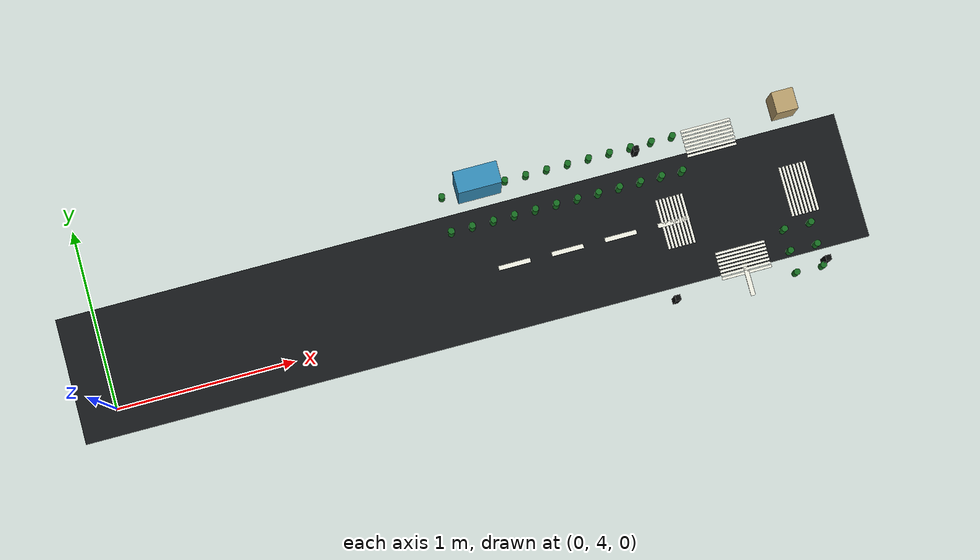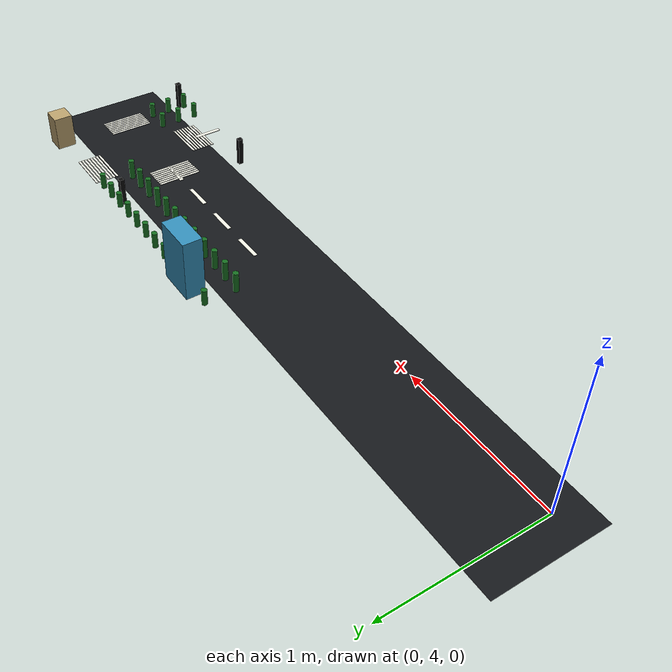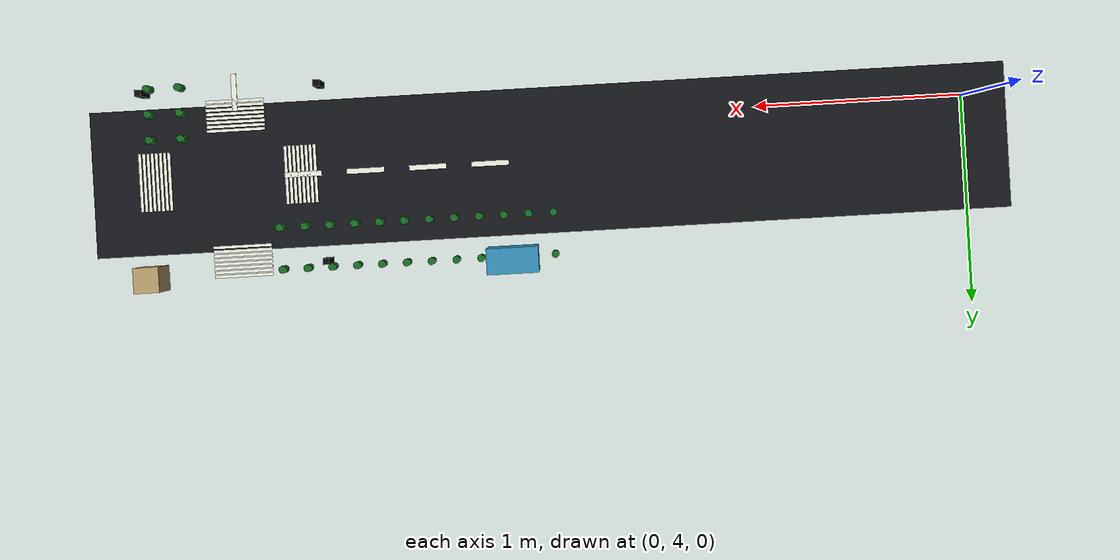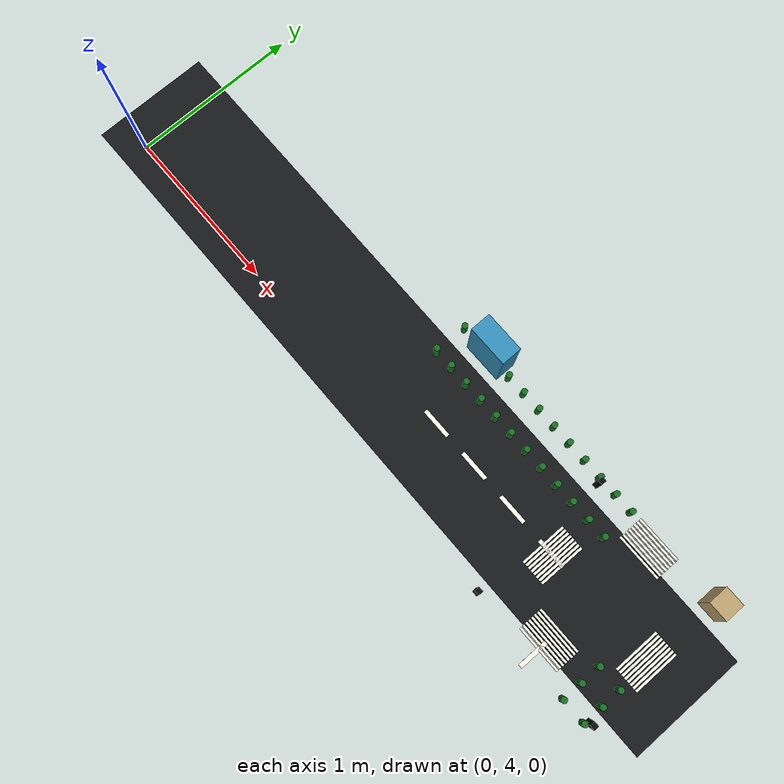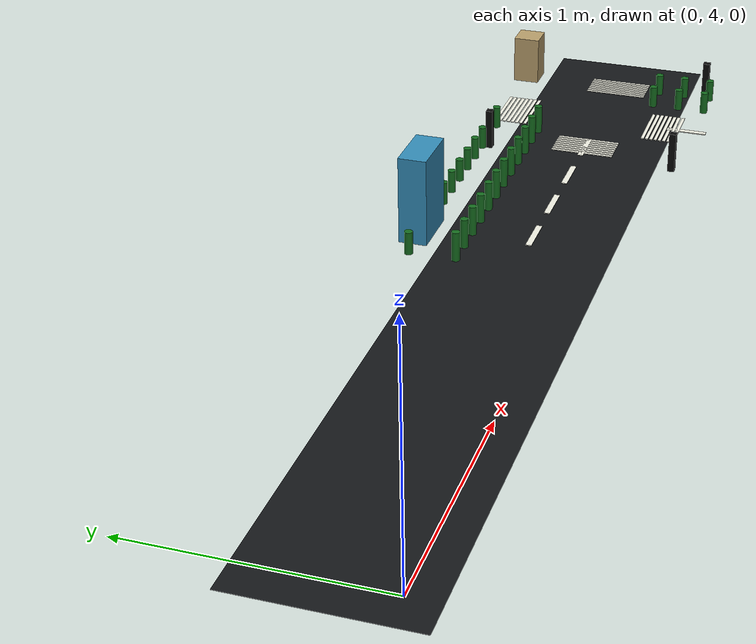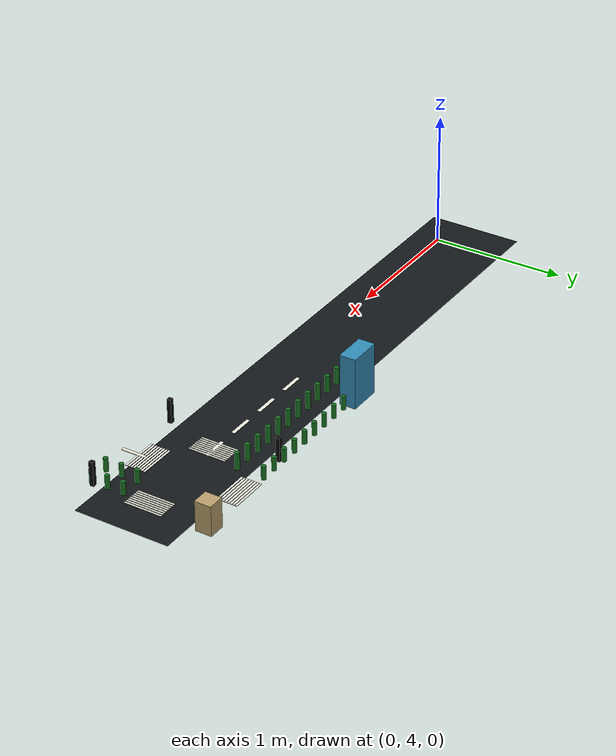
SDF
<sdf version="1.7">
 <world name="nexus_sandbox_imx219">
  <model name="RD-RING-N">
   <static>true</static>
   <pose>2.0 4.2 0.051000000000000004 0 0 0</pose>
   <link name="link">
    <collision name="collision">
     <geometry><box><size>4.4 0.7000000000000001 0.002</size></box></geometry>
    </collision>
    <visual name="visual">
     <geometry><box><size>4.4 0.7000000000000001 0.002</size></box></geometry>
     <material><ambient>0.08 0.09 0.1 1</ambient><diffuse>0.08 0.09 0.1 1</diffuse></material>
    </visual>
   </link>
  </model>
  <model name="LM-RING-E-11">
   <static>true</static>
   <pose>3.5 3.79 0.05450000000000001 0 0 0</pose>
   <link name="link">
    <collision name="collision"><geometry><box><size>0.025 0.18 0.004</size></box></geometry></collision>
    <visual name="visual">
     <geometry><box><size>0.025 0.18 0.004</size></box></geometry>
     <material><ambient>0.93 0.93 0.88 1</ambient><diffuse>0.93 0.93 0.88 1</diffuse></material>
    </visual>
   </link>
  </model>
  <model name="LM-RING-N-06">
   <static>true</static>
   <pose>2.29 4.2 0.05450000000000001 0 0 0</pose>
   <link name="link">
    <collision name="collision"><geometry><box><size>0.18 0.025 0.004</size></box></geometry></collision>
    <visual name="visual">
     <geometry><box><size>0.18 0.025 0.004</size></box></geometry>
     <material><ambient>0.93 0.93 0.88 1</ambient><diffuse>0.93 0.93 0.88 1</diffuse></material>
    </visual>
   </link>
  </model>
  <model name="LM-RING-N-07">
   <static>true</static>
   <pose>2.59 4.2 0.05450000000000001 0 0 0</pose>
   <link name="link">
    <collision name="collision"><geometry><box><size>0.18 0.025 0.004</size></box></geometry></collision>
    <visual name="visual">
     <geometry><box><size>0.18 0.025 0.004</size></box></geometry>
     <material><ambient>0.93 0.93 0.88 1</ambient><diffuse>0.93 0.93 0.88 1</diffuse></material>
    </visual>
   </link>
  </model>
  <model name="LM-RING-N-08">
   <static>true</static>
   <pose>2.89 4.2 0.05450000000000001 0 0 0</pose>
   <link name="link">
    <collision name="collision"><geometry><box><size>0.18 0.025 0.004</size></box></geometry></collision>
    <visual name="visual">
     <geometry><box><size>0.18 0.025 0.004</size></box></geometry>
     <material><ambient>0.93 0.93 0.88 1</ambient><diffuse>0.93 0.93 0.88 1</diffuse></material>
    </visual>
   </link>
  </model>
  <model name="LM-RING-N-09">
   <static>true</static>
   <pose>3.19 4.2 0.05450000000000001 0 0 0</pose>
   <link name="link">
    <collision name="collision"><geometry><box><size>0.18 0.025 0.004</size></box></geometry></collision>
    <visual name="visual">
     <geometry><box><size>0.18 0.025 0.004</size></box></geometry>
     <material><ambient>0.93 0.93 0.88 1</ambient><diffuse>0.93 0.93 0.88 1</diffuse></material>
    </visual>
   </link>
  </model>
  <model name="CW-NE-X-01">
   <static>true</static>
   <pose>3.5 3.83 0.05450000000000001 0 0 0</pose>
   <link name="link">
    <collision name="collision"><geometry><box><size>0.28 0.014 0.004</size></box></geometry></collision>
    <visual name="visual">
     <geometry><box><size>0.28 0.014 0.004</size></box></geometry>
     <material><ambient>0.93 0.93 0.88 1</ambient><diffuse>0.93 0.93 0.88 1</diffuse></material>
    </visual>
   </link>
  </model>
  <model name="CW-NE-X-02">
   <static>true</static>
   <pose>3.5 3.85 0.05450000000000001 0 0 0</pose>
   <link name="link">
    <collision name="collision"><geometry><box><size>0.28 0.014 0.004</size></box></geometry></collision>
    <visual name="visual">
     <geometry><box><size>0.28 0.014 0.004</size></box></geometry>
     <material><ambient>0.93 0.93 0.88 1</ambient><diffuse>0.93 0.93 0.88 1</diffuse></material>
    </visual>
   </link>
  </model>
  <model name="CW-NE-X-03">
   <static>true</static>
   <pose>3.5 3.87 0.05450000000000001 0 0 0</pose>
   <link name="link">
    <collision name="collision"><geometry><box><size>0.28 0.014 0.004</size></box></geometry></collision>
    <visual name="visual">
     <geometry><box><size>0.28 0.014 0.004</size></box></geometry>
     <material><ambient>0.93 0.93 0.88 1</ambient><diffuse>0.93 0.93 0.88 1</diffuse></material>
    </visual>
   </link>
  </model>
  <model name="CW-NE-X-04">
   <static>true</static>
   <pose>3.5 3.89 0.05450000000000001 0 0 0</pose>
   <link name="link">
    <collision name="collision"><geometry><box><size>0.28 0.014 0.004</size></box></geometry></collision>
    <visual name="visual">
     <geometry><box><size>0.28 0.014 0.004</size></box></geometry>
     <material><ambient>0.93 0.93 0.88 1</ambient><diffuse>0.93 0.93 0.88 1</diffuse></material>
    </visual>
   </link>
  </model>
  <model name="CW-NE-X-05">
   <static>true</static>
   <pose>3.5 3.9099999999999997 0.05450000000000001 0 0 0</pose>
   <link name="link">
    <collision name="collision"><geometry><box><size>0.28 0.014 0.004</size></box></geometry></collision>
    <visual name="visual">
     <geometry><box><size>0.28 0.014 0.004</size></box></geometry>
     <material><ambient>0.93 0.93 0.88 1</ambient><diffuse>0.93 0.93 0.88 1</diffuse></material>
    </visual>
   </link>
  </model>
  <model name="CW-NE-X-06">
   <static>true</static>
   <pose>3.5 3.9299999999999997 0.05450000000000001 0 0 0</pose>
   <link name="link">
    <collision name="collision"><geometry><box><size>0.28 0.014 0.004</size></box></geometry></collision>
    <visual name="visual">
     <geometry><box><size>0.28 0.014 0.004</size></box></geometry>
     <material><ambient>0.93 0.93 0.88 1</ambient><diffuse>0.93 0.93 0.88 1</diffuse></material>
    </visual>
   </link>
  </model>
  <model name="CW-NE-X-07">
   <static>true</static>
   <pose>3.5 3.9499999999999997 0.05450000000000001 0 0 0</pose>
   <link name="link">
    <collision name="collision"><geometry><box><size>0.28 0.014 0.004</size></box></geometry></collision>
    <visual name="visual">
     <geometry><box><size>0.28 0.014 0.004</size></box></geometry>
     <material><ambient>0.93 0.93 0.88 1</ambient><diffuse>0.93 0.93 0.88 1</diffuse></material>
    </visual>
   </link>
  </model>
  <model name="CW-NE-X-08">
   <static>true</static>
   <pose>3.5 3.9699999999999998 0.05450000000000001 0 0 0</pose>
   <link name="link">
    <collision name="collision"><geometry><box><size>0.28 0.014 0.004</size></box></geometry></collision>
    <visual name="visual">
     <geometry><box><size>0.28 0.014 0.004</size></box></geometry>
     <material><ambient>0.93 0.93 0.88 1</ambient><diffuse>0.93 0.93 0.88 1</diffuse></material>
    </visual>
   </link>
  </model>
  <model name="CW-NE-Y-01">
   <static>true</static>
   <pose>3.1300000000000003 4.2 0.05450000000000001 0 0 0</pose>
   <link name="link">
    <collision name="collision"><geometry><box><size>0.014 0.28 0.004</size></box></geometry></collision>
    <visual name="visual">
     <geometry><box><size>0.014 0.28 0.004</size></box></geometry>
     <material><ambient>0.93 0.93 0.88 1</ambient><diffuse>0.93 0.93 0.88 1</diffuse></material>
    </visual>
   </link>
  </model>
  <model name="CW-NE-Y-02">
   <static>true</static>
   <pose>3.1500000000000004 4.2 0.05450000000000001 0 0 0</pose>
   <link name="link">
    <collision name="collision"><geometry><box><size>0.014 0.28 0.004</size></box></geometry></collision>
    <visual name="visual">
     <geometry><box><size>0.014 0.28 0.004</size></box></geometry>
     <material><ambient>0.93 0.93 0.88 1</ambient><diffuse>0.93 0.93 0.88 1</diffuse></material>
    </visual>
   </link>
  </model>
  <model name="CW-NE-Y-03">
   <static>true</static>
   <pose>3.1700000000000004 4.2 0.05450000000000001 0 0 0</pose>
   <link name="link">
    <collision name="collision"><geometry><box><size>0.014 0.28 0.004</size></box></geometry></collision>
    <visual name="visual">
     <geometry><box><size>0.014 0.28 0.004</size></box></geometry>
     <material><ambient>0.93 0.93 0.88 1</ambient><diffuse>0.93 0.93 0.88 1</diffuse></material>
    </visual>
   </link>
  </model>
  <model name="CW-NE-Y-04">
   <static>true</static>
   <pose>3.1900000000000004 4.2 0.05450000000000001 0 0 0</pose>
   <link name="link">
    <collision name="collision"><geometry><box><size>0.014 0.28 0.004</size></box></geometry></collision>
    <visual name="visual">
     <geometry><box><size>0.014 0.28 0.004</size></box></geometry>
     <material><ambient>0.93 0.93 0.88 1</ambient><diffuse>0.93 0.93 0.88 1</diffuse></material>
    </visual>
   </link>
  </model>
  <model name="CW-NE-Y-05">
   <static>true</static>
   <pose>3.21 4.2 0.05450000000000001 0 0 0</pose>
   <link name="link">
    <collision name="collision"><geometry><box><size>0.014 0.28 0.004</size></box></geometry></collision>
    <visual name="visual">
     <geometry><box><size>0.014 0.28 0.004</size></box></geometry>
     <material><ambient>0.93 0.93 0.88 1</ambient><diffuse>0.93 0.93 0.88 1</diffuse></material>
    </visual>
   </link>
  </model>
  <model name="CW-NE-Y-06">
   <static>true</static>
   <pose>3.23 4.2 0.05450000000000001 0 0 0</pose>
   <link name="link">
    <collision name="collision"><geometry><box><size>0.014 0.28 0.004</size></box></geometry></collision>
    <visual name="visual">
     <geometry><box><size>0.014 0.28 0.004</size></box></geometry>
     <material><ambient>0.93 0.93 0.88 1</ambient><diffuse>0.93 0.93 0.88 1</diffuse></material>
    </visual>
   </link>
  </model>
  <model name="CW-NE-Y-07">
   <static>true</static>
   <pose>3.25 4.2 0.05450000000000001 0 0 0</pose>
   <link name="link">
    <collision name="collision"><geometry><box><size>0.014 0.28 0.004</size></box></geometry></collision>
    <visual name="visual">
     <geometry><box><size>0.014 0.28 0.004</size></box></geometry>
     <material><ambient>0.93 0.93 0.88 1</ambient><diffuse>0.93 0.93 0.88 1</diffuse></material>
    </visual>
   </link>
  </model>
  <model name="CW-NE-Y-08">
   <static>true</static>
   <pose>3.27 4.2 0.05450000000000001 0 0 0</pose>
   <link name="link">
    <collision name="collision"><geometry><box><size>0.014 0.28 0.004</size></box></geometry></collision>
    <visual name="visual">
     <geometry><box><size>0.014 0.28 0.004</size></box></geometry>
     <material><ambient>0.93 0.93 0.88 1</ambient><diffuse>0.93 0.93 0.88 1</diffuse></material>
    </visual>
   </link>
  </model>
  <model name="CW-EXT-E-N-01">
   <static>true</static>
   <pose>3.5 4.53 0.05450000000000001 0 0 0</pose>
   <link name="link">
    <collision name="collision"><geometry><box><size>0.28 0.014 0.004</size></box></geometry></collision>
    <visual name="visual">
     <geometry><box><size>0.28 0.014 0.004</size></box></geometry>
     <material><ambient>0.93 0.93 0.88 1</ambient><diffuse>0.93 0.93 0.88 1</diffuse></material>
    </visual>
   </link>
  </model>
  <model name="CW-EXT-E-N-02">
   <static>true</static>
   <pose>3.5 4.550000000000001 0.05450000000000001 0 0 0</pose>
   <link name="link">
    <collision name="collision"><geometry><box><size>0.28 0.014 0.004</size></box></geometry></collision>
    <visual name="visual">
     <geometry><box><size>0.28 0.014 0.004</size></box></geometry>
     <material><ambient>0.93 0.93 0.88 1</ambient><diffuse>0.93 0.93 0.88 1</diffuse></material>
    </visual>
   </link>
  </model>
  <model name="CW-EXT-E-N-03">
   <static>true</static>
   <pose>3.5 4.57 0.05450000000000001 0 0 0</pose>
   <link name="link">
    <collision name="collision"><geometry><box><size>0.28 0.014 0.004</size></box></geometry></collision>
    <visual name="visual">
     <geometry><box><size>0.28 0.014 0.004</size></box></geometry>
     <material><ambient>0.93 0.93 0.88 1</ambient><diffuse>0.93 0.93 0.88 1</diffuse></material>
    </visual>
   </link>
  </model>
  <model name="CW-EXT-E-N-04">
   <static>true</static>
   <pose>3.5 4.590000000000001 0.05450000000000001 0 0 0</pose>
   <link name="link">
    <collision name="collision"><geometry><box><size>0.28 0.014 0.004</size></box></geometry></collision>
    <visual name="visual">
     <geometry><box><size>0.28 0.014 0.004</size></box></geometry>
     <material><ambient>0.93 0.93 0.88 1</ambient><diffuse>0.93 0.93 0.88 1</diffuse></material>
    </visual>
   </link>
  </model>
  <model name="CW-EXT-E-N-05">
   <static>true</static>
   <pose>3.5 4.61 0.05450000000000001 0 0 0</pose>
   <link name="link">
    <collision name="collision"><geometry><box><size>0.28 0.014 0.004</size></box></geometry></collision>
    <visual name="visual">
     <geometry><box><size>0.28 0.014 0.004</size></box></geometry>
     <material><ambient>0.93 0.93 0.88 1</ambient><diffuse>0.93 0.93 0.88 1</diffuse></material>
    </visual>
   </link>
  </model>
  <model name="CW-EXT-E-N-06">
   <static>true</static>
   <pose>3.5 4.630000000000001 0.05450000000000001 0 0 0</pose>
   <link name="link">
    <collision name="collision"><geometry><box><size>0.28 0.014 0.004</size></box></geometry></collision>
    <visual name="visual">
     <geometry><box><size>0.28 0.014 0.004</size></box></geometry>
     <material><ambient>0.93 0.93 0.88 1</ambient><diffuse>0.93 0.93 0.88 1</diffuse></material>
    </visual>
   </link>
  </model>
  <model name="CW-EXT-E-N-07">
   <static>true</static>
   <pose>3.5 4.65 0.05450000000000001 0 0 0</pose>
   <link name="link">
    <collision name="collision"><geometry><box><size>0.28 0.014 0.004</size></box></geometry></collision>
    <visual name="visual">
     <geometry><box><size>0.28 0.014 0.004</size></box></geometry>
     <material><ambient>0.93 0.93 0.88 1</ambient><diffuse>0.93 0.93 0.88 1</diffuse></material>
    </visual>
   </link>
  </model>
  <model name="CW-EXT-E-N-08">
   <static>true</static>
   <pose>3.5 4.670000000000001 0.05450000000000001 0 0 0</pose>
   <link name="link">
    <collision name="collision"><geometry><box><size>0.28 0.014 0.004</size></box></geometry></collision>
    <visual name="visual">
     <geometry><box><size>0.28 0.014 0.004</size></box></geometry>
     <material><ambient>0.93 0.93 0.88 1</ambient><diffuse>0.93 0.93 0.88 1</diffuse></material>
    </visual>
   </link>
  </model>
  <model name="CW-EXT-N-E-01">
   <static>true</static>
   <pose>3.83 4.2 0.05450000000000001 0 0 0</pose>
   <link name="link">
    <collision name="collision"><geometry><box><size>0.014 0.28 0.004</size></box></geometry></collision>
    <visual name="visual">
     <geometry><box><size>0.014 0.28 0.004</size></box></geometry>
     <material><ambient>0.93 0.93 0.88 1</ambient><diffuse>0.93 0.93 0.88 1</diffuse></material>
    </visual>
   </link>
  </model>
  <model name="CW-EXT-N-E-02">
   <static>true</static>
   <pose>3.85 4.2 0.05450000000000001 0 0 0</pose>
   <link name="link">
    <collision name="collision"><geometry><box><size>0.014 0.28 0.004</size></box></geometry></collision>
    <visual name="visual">
     <geometry><box><size>0.014 0.28 0.004</size></box></geometry>
     <material><ambient>0.93 0.93 0.88 1</ambient><diffuse>0.93 0.93 0.88 1</diffuse></material>
    </visual>
   </link>
  </model>
  <model name="CW-EXT-N-E-03">
   <static>true</static>
   <pose>3.87 4.2 0.05450000000000001 0 0 0</pose>
   <link name="link">
    <collision name="collision"><geometry><box><size>0.014 0.28 0.004</size></box></geometry></collision>
    <visual name="visual">
     <geometry><box><size>0.014 0.28 0.004</size></box></geometry>
     <material><ambient>0.93 0.93 0.88 1</ambient><diffuse>0.93 0.93 0.88 1</diffuse></material>
    </visual>
   </link>
  </model>
  <model name="CW-EXT-N-E-04">
   <static>true</static>
   <pose>3.89 4.2 0.05450000000000001 0 0 0</pose>
   <link name="link">
    <collision name="collision"><geometry><box><size>0.014 0.28 0.004</size></box></geometry></collision>
    <visual name="visual">
     <geometry><box><size>0.014 0.28 0.004</size></box></geometry>
     <material><ambient>0.93 0.93 0.88 1</ambient><diffuse>0.93 0.93 0.88 1</diffuse></material>
    </visual>
   </link>
  </model>
  <model name="CW-EXT-N-E-05">
   <static>true</static>
   <pose>3.9099999999999997 4.2 0.05450000000000001 0 0 0</pose>
   <link name="link">
    <collision name="collision"><geometry><box><size>0.014 0.28 0.004</size></box></geometry></collision>
    <visual name="visual">
     <geometry><box><size>0.014 0.28 0.004</size></box></geometry>
     <material><ambient>0.93 0.93 0.88 1</ambient><diffuse>0.93 0.93 0.88 1</diffuse></material>
    </visual>
   </link>
  </model>
  <model name="CW-EXT-N-E-06">
   <static>true</static>
   <pose>3.9299999999999997 4.2 0.05450000000000001 0 0 0</pose>
   <link name="link">
    <collision name="collision"><geometry><box><size>0.014 0.28 0.004</size></box></geometry></collision>
    <visual name="visual">
     <geometry><box><size>0.014 0.28 0.004</size></box></geometry>
     <material><ambient>0.93 0.93 0.88 1</ambient><diffuse>0.93 0.93 0.88 1</diffuse></material>
    </visual>
   </link>
  </model>
  <model name="CW-EXT-N-E-07">
   <static>true</static>
   <pose>3.9499999999999997 4.2 0.05450000000000001 0 0 0</pose>
   <link name="link">
    <collision name="collision"><geometry><box><size>0.014 0.28 0.004</size></box></geometry></collision>
    <visual name="visual">
     <geometry><box><size>0.014 0.28 0.004</size></box></geometry>
     <material><ambient>0.93 0.93 0.88 1</ambient><diffuse>0.93 0.93 0.88 1</diffuse></material>
    </visual>
   </link>
  </model>
  <model name="CW-EXT-N-E-08">
   <static>true</static>
   <pose>3.9699999999999998 4.2 0.05450000000000001 0 0 0</pose>
   <link name="link">
    <collision name="collision"><geometry><box><size>0.014 0.28 0.004</size></box></geometry></collision>
    <visual name="visual">
     <geometry><box><size>0.014 0.28 0.004</size></box></geometry>
     <material><ambient>0.93 0.93 0.88 1</ambient><diffuse>0.93 0.93 0.88 1</diffuse></material>
    </visual>
   </link>
  </model>
  <model name="BLD-F03">
   <static>true</static>
   <pose>2.2 4.66 0.24 0 0 0</pose>
   <link name="link">
    <collision name="collision"><geometry><box><size>0.24 0.12 0.38</size></box></geometry></collision>
    <visual name="visual">
     <geometry><box><size>0.24 0.12 0.38</size></box></geometry>
     <material><ambient>0.2 0.55 0.72 1</ambient><diffuse>0.2 0.55 0.72 1</diffuse></material>
    </visual>
   </link>
  </model>
  <model name="BLD-F04">
   <static>true</static>
   <pose>3.92 4.66 0.16 0 0 0</pose>
   <link name="link">
    <collision name="collision"><geometry><box><size>0.12 0.12 0.22</size></box></geometry></collision>
    <visual name="visual">
     <geometry><box><size>0.12 0.12 0.22</size></box></geometry>
     <material><ambient>0.72 0.62 0.42 1</ambient><diffuse>0.72 0.62 0.42 1</diffuse></material>
    </visual>
   </link>
  </model>
  <model name="TR-R01-26">
   <static>true</static>
   <pose>3.9 3.7555555555555555 0.1 0 0 0</pose>
   <link name="link">
    <collision name="collision">
     <geometry><cylinder><radius>0.0175</radius><length>0.1</length></cylinder></geometry>
    </collision>
    <visual name="visual">
     <geometry><cylinder><radius>0.0175</radius><length>0.1</length></cylinder></geometry>
     <material><ambient>0.08 0.42 0.12 1</ambient><diffuse>0.08 0.42 0.12 1</diffuse></material>
    </visual>
   </link>
  </model>
  <model name="TR-R01-27">
   <static>true</static>
   <pose>3.9 3.8777777777777778 0.1 0 0 0</pose>
   <link name="link">
    <collision name="collision">
     <geometry><cylinder><radius>0.0175</radius><length>0.1</length></cylinder></geometry>
    </collision>
    <visual name="visual">
     <geometry><cylinder><radius>0.0175</radius><length>0.1</length></cylinder></geometry>
     <material><ambient>0.08 0.42 0.12 1</ambient><diffuse>0.08 0.42 0.12 1</diffuse></material>
    </visual>
   </link>
  </model>
  <model name="TR-R01-28">
   <static>true</static>
   <pose>3.9 4.0 0.1 0 0 0</pose>
   <link name="link">
    <collision name="collision">
     <geometry><cylinder><radius>0.0175</radius><length>0.1</length></cylinder></geometry>
    </collision>
    <visual name="visual">
     <geometry><cylinder><radius>0.0175</radius><length>0.1</length></cylinder></geometry>
     <material><ambient>0.08 0.42 0.12 1</ambient><diffuse>0.08 0.42 0.12 1</diffuse></material>
    </visual>
   </link>
  </model>
  <model name="TR-R02-26">
   <static>true</static>
   <pose>3.75 3.7555555555555555 0.1 0 0 0</pose>
   <link name="link">
    <collision name="collision">
     <geometry><cylinder><radius>0.0175</radius><length>0.1</length></cylinder></geometry>
    </collision>
    <visual name="visual">
     <geometry><cylinder><radius>0.0175</radius><length>0.1</length></cylinder></geometry>
     <material><ambient>0.08 0.42 0.12 1</ambient><diffuse>0.08 0.42 0.12 1</diffuse></material>
    </visual>
   </link>
  </model>
  <model name="TR-R02-27">
   <static>true</static>
   <pose>3.75 3.8777777777777778 0.1 0 0 0</pose>
   <link name="link">
    <collision name="collision">
     <geometry><cylinder><radius>0.0175</radius><length>0.1</length></cylinder></geometry>
    </collision>
    <visual name="visual">
     <geometry><cylinder><radius>0.0175</radius><length>0.1</length></cylinder></geometry>
     <material><ambient>0.08 0.42 0.12 1</ambient><diffuse>0.08 0.42 0.12 1</diffuse></material>
    </visual>
   </link>
  </model>
  <model name="TR-R02-28">
   <static>true</static>
   <pose>3.75 4.0 0.1 0 0 0</pose>
   <link name="link">
    <collision name="collision">
     <geometry><cylinder><radius>0.0175</radius><length>0.1</length></cylinder></geometry>
    </collision>
    <visual name="visual">
     <geometry><cylinder><radius>0.0175</radius><length>0.1</length></cylinder></geometry>
     <material><ambient>0.08 0.42 0.12 1</ambient><diffuse>0.08 0.42 0.12 1</diffuse></material>
    </visual>
   </link>
  </model>
  <model name="TR-B01-12">
   <static>true</static>
   <pose>2.0 4.65 0.1 0 0 0</pose>
   <link name="link">
    <collision name="collision">
     <geometry><cylinder><radius>0.0175</radius><length>0.1</length></cylinder></geometry>
    </collision>
    <visual name="visual">
     <geometry><cylinder><radius>0.0175</radius><length>0.1</length></cylinder></geometry>
     <material><ambient>0.08 0.42 0.12 1</ambient><diffuse>0.08 0.42 0.12 1</diffuse></material>
    </visual>
   </link>
  </model>
  <model name="TR-B01-13">
   <static>true</static>
   <pose>2.118181818181818 4.65 0.1 0 0 0</pose>
   <link name="link">
    <collision name="collision">
     <geometry><cylinder><radius>0.0175</radius><length>0.1</length></cylinder></geometry>
    </collision>
    <visual name="visual">
     <geometry><cylinder><radius>0.0175</radius><length>0.1</length></cylinder></geometry>
     <material><ambient>0.08 0.42 0.12 1</ambient><diffuse>0.08 0.42 0.12 1</diffuse></material>
    </visual>
   </link>
  </model>
  <model name="TR-B01-14">
   <static>true</static>
   <pose>2.2363636363636368 4.65 0.1 0 0 0</pose>
   <link name="link">
    <collision name="collision">
     <geometry><cylinder><radius>0.0175</radius><length>0.1</length></cylinder></geometry>
    </collision>
    <visual name="visual">
     <geometry><cylinder><radius>0.0175</radius><length>0.1</length></cylinder></geometry>
     <material><ambient>0.08 0.42 0.12 1</ambient><diffuse>0.08 0.42 0.12 1</diffuse></material>
    </visual>
   </link>
  </model>
  <model name="TR-B01-15">
   <static>true</static>
   <pose>2.3545454545454545 4.65 0.1 0 0 0</pose>
   <link name="link">
    <collision name="collision">
     <geometry><cylinder><radius>0.0175</radius><length>0.1</length></cylinder></geometry>
    </collision>
    <visual name="visual">
     <geometry><cylinder><radius>0.0175</radius><length>0.1</length></cylinder></geometry>
     <material><ambient>0.08 0.42 0.12 1</ambient><diffuse>0.08 0.42 0.12 1</diffuse></material>
    </visual>
   </link>
  </model>
  <model name="TR-B01-16">
   <static>true</static>
   <pose>2.4727272727272727 4.65 0.1 0 0 0</pose>
   <link name="link">
    <collision name="collision">
     <geometry><cylinder><radius>0.0175</radius><length>0.1</length></cylinder></geometry>
    </collision>
    <visual name="visual">
     <geometry><cylinder><radius>0.0175</radius><length>0.1</length></cylinder></geometry>
     <material><ambient>0.08 0.42 0.12 1</ambient><diffuse>0.08 0.42 0.12 1</diffuse></material>
    </visual>
   </link>
  </model>
  <model name="TR-B01-17">
   <static>true</static>
   <pose>2.5909090909090913 4.65 0.1 0 0 0</pose>
   <link name="link">
    <collision name="collision">
     <geometry><cylinder><radius>0.0175</radius><length>0.1</length></cylinder></geometry>
    </collision>
    <visual name="visual">
     <geometry><cylinder><radius>0.0175</radius><length>0.1</length></cylinder></geometry>
     <material><ambient>0.08 0.42 0.12 1</ambient><diffuse>0.08 0.42 0.12 1</diffuse></material>
    </visual>
   </link>
  </model>
  <model name="TR-B01-18">
   <static>true</static>
   <pose>2.7090909090909094 4.65 0.1 0 0 0</pose>
   <link name="link">
    <collision name="collision">
     <geometry><cylinder><radius>0.0175</radius><length>0.1</length></cylinder></geometry>
    </collision>
    <visual name="visual">
     <geometry><cylinder><radius>0.0175</radius><length>0.1</length></cylinder></geometry>
     <material><ambient>0.08 0.42 0.12 1</ambient><diffuse>0.08 0.42 0.12 1</diffuse></material>
    </visual>
   </link>
  </model>
  <model name="TR-B01-19">
   <static>true</static>
   <pose>2.8272727272727276 4.65 0.1 0 0 0</pose>
   <link name="link">
    <collision name="collision">
     <geometry><cylinder><radius>0.0175</radius><length>0.1</length></cylinder></geometry>
    </collision>
    <visual name="visual">
     <geometry><cylinder><radius>0.0175</radius><length>0.1</length></cylinder></geometry>
     <material><ambient>0.08 0.42 0.12 1</ambient><diffuse>0.08 0.42 0.12 1</diffuse></material>
    </visual>
   </link>
  </model>
  <model name="TR-B01-20">
   <static>true</static>
   <pose>2.9454545454545458 4.65 0.1 0 0 0</pose>
   <link name="link">
    <collision name="collision">
     <geometry><cylinder><radius>0.0175</radius><length>0.1</length></cylinder></geometry>
    </collision>
    <visual name="visual">
     <geometry><cylinder><radius>0.0175</radius><length>0.1</length></cylinder></geometry>
     <material><ambient>0.08 0.42 0.12 1</ambient><diffuse>0.08 0.42 0.12 1</diffuse></material>
    </visual>
   </link>
  </model>
  <model name="TR-B01-21">
   <static>true</static>
   <pose>3.063636363636364 4.65 0.1 0 0 0</pose>
   <link name="link">
    <collision name="collision">
     <geometry><cylinder><radius>0.0175</radius><length>0.1</length></cylinder></geometry>
    </collision>
    <visual name="visual">
     <geometry><cylinder><radius>0.0175</radius><length>0.1</length></cylinder></geometry>
     <material><ambient>0.08 0.42 0.12 1</ambient><diffuse>0.08 0.42 0.12 1</diffuse></material>
    </visual>
   </link>
  </model>
  <model name="TR-B01-22">
   <static>true</static>
   <pose>3.181818181818182 4.65 0.1 0 0 0</pose>
   <link name="link">
    <collision name="collision">
     <geometry><cylinder><radius>0.0175</radius><length>0.1</length></cylinder></geometry>
    </collision>
    <visual name="visual">
     <geometry><cylinder><radius>0.0175</radius><length>0.1</length></cylinder></geometry>
     <material><ambient>0.08 0.42 0.12 1</ambient><diffuse>0.08 0.42 0.12 1</diffuse></material>
    </visual>
   </link>
  </model>
  <model name="TR-B01-23">
   <static>true</static>
   <pose>3.3000000000000003 4.65 0.1 0 0 0</pose>
   <link name="link">
    <collision name="collision">
     <geometry><cylinder><radius>0.0175</radius><length>0.1</length></cylinder></geometry>
    </collision>
    <visual name="visual">
     <geometry><cylinder><radius>0.0175</radius><length>0.1</length></cylinder></geometry>
     <material><ambient>0.08 0.42 0.12 1</ambient><diffuse>0.08 0.42 0.12 1</diffuse></material>
    </visual>
   </link>
  </model>
  <model name="TR-B02-12">
   <static>true</static>
   <pose>2.0 4.45 0.115 0 0 0</pose>
   <link name="link">
    <collision name="collision">
     <geometry><cylinder><radius>0.0175</radius><length>0.13</length></cylinder></geometry>
    </collision>
    <visual name="visual">
     <geometry><cylinder><radius>0.0175</radius><length>0.13</length></cylinder></geometry>
     <material><ambient>0.08 0.42 0.12 1</ambient><diffuse>0.08 0.42 0.12 1</diffuse></material>
    </visual>
   </link>
  </model>
  <model name="TR-B02-13">
   <static>true</static>
   <pose>2.118181818181818 4.45 0.115 0 0 0</pose>
   <link name="link">
    <collision name="collision">
     <geometry><cylinder><radius>0.0175</radius><length>0.13</length></cylinder></geometry>
    </collision>
    <visual name="visual">
     <geometry><cylinder><radius>0.0175</radius><length>0.13</length></cylinder></geometry>
     <material><ambient>0.08 0.42 0.12 1</ambient><diffuse>0.08 0.42 0.12 1</diffuse></material>
    </visual>
   </link>
  </model>
  <model name="TR-B02-14">
   <static>true</static>
   <pose>2.2363636363636368 4.45 0.115 0 0 0</pose>
   <link name="link">
    <collision name="collision">
     <geometry><cylinder><radius>0.0175</radius><length>0.13</length></cylinder></geometry>
    </collision>
    <visual name="visual">
     <geometry><cylinder><radius>0.0175</radius><length>0.13</length></cylinder></geometry>
     <material><ambient>0.08 0.42 0.12 1</ambient><diffuse>0.08 0.42 0.12 1</diffuse></material>
    </visual>
   </link>
  </model>
  <model name="TR-B02-15">
   <static>true</static>
   <pose>2.3545454545454545 4.45 0.115 0 0 0</pose>
   <link name="link">
    <collision name="collision">
     <geometry><cylinder><radius>0.0175</radius><length>0.13</length></cylinder></geometry>
    </collision>
    <visual name="visual">
     <geometry><cylinder><radius>0.0175</radius><length>0.13</length></cylinder></geometry>
     <material><ambient>0.08 0.42 0.12 1</ambient><diffuse>0.08 0.42 0.12 1</diffuse></material>
    </visual>
   </link>
  </model>
  <model name="TR-B02-16">
   <static>true</static>
   <pose>2.4727272727272727 4.45 0.115 0 0 0</pose>
   <link name="link">
    <collision name="collision">
     <geometry><cylinder><radius>0.0175</radius><length>0.13</length></cylinder></geometry>
    </collision>
    <visual name="visual">
     <geometry><cylinder><radius>0.0175</radius><length>0.13</length></cylinder></geometry>
     <material><ambient>0.08 0.42 0.12 1</ambient><diffuse>0.08 0.42 0.12 1</diffuse></material>
    </visual>
   </link>
  </model>
  <model name="TR-B02-17">
   <static>true</static>
   <pose>2.5909090909090913 4.45 0.115 0 0 0</pose>
   <link name="link">
    <collision name="collision">
     <geometry><cylinder><radius>0.0175</radius><length>0.13</length></cylinder></geometry>
    </collision>
    <visual name="visual">
     <geometry><cylinder><radius>0.0175</radius><length>0.13</length></cylinder></geometry>
     <material><ambient>0.08 0.42 0.12 1</ambient><diffuse>0.08 0.42 0.12 1</diffuse></material>
    </visual>
   </link>
  </model>
  <model name="TR-B02-18">
   <static>true</static>
   <pose>2.7090909090909094 4.45 0.115 0 0 0</pose>
   <link name="link">
    <collision name="collision">
     <geometry><cylinder><radius>0.0175</radius><length>0.13</length></cylinder></geometry>
    </collision>
    <visual name="visual">
     <geometry><cylinder><radius>0.0175</radius><length>0.13</length></cylinder></geometry>
     <material><ambient>0.08 0.42 0.12 1</ambient><diffuse>0.08 0.42 0.12 1</diffuse></material>
    </visual>
   </link>
  </model>
  <model name="TR-B02-19">
   <static>true</static>
   <pose>2.8272727272727276 4.45 0.115 0 0 0</pose>
   <link name="link">
    <collision name="collision">
     <geometry><cylinder><radius>0.0175</radius><length>0.13</length></cylinder></geometry>
    </collision>
    <visual name="visual">
     <geometry><cylinder><radius>0.0175</radius><length>0.13</length></cylinder></geometry>
     <material><ambient>0.08 0.42 0.12 1</ambient><diffuse>0.08 0.42 0.12 1</diffuse></material>
    </visual>
   </link>
  </model>
  <model name="TR-B02-20">
   <static>true</static>
   <pose>2.9454545454545458 4.45 0.115 0 0 0</pose>
   <link name="link">
    <collision name="collision">
     <geometry><cylinder><radius>0.0175</radius><length>0.13</length></cylinder></geometry>
    </collision>
    <visual name="visual">
     <geometry><cylinder><radius>0.0175</radius><length>0.13</length></cylinder></geometry>
     <material><ambient>0.08 0.42 0.12 1</ambient><diffuse>0.08 0.42 0.12 1</diffuse></material>
    </visual>
   </link>
  </model>
  <model name="TR-B02-21">
   <static>true</static>
   <pose>3.063636363636364 4.45 0.115 0 0 0</pose>
   <link name="link">
    <collision name="collision">
     <geometry><cylinder><radius>0.0175</radius><length>0.13</length></cylinder></geometry>
    </collision>
    <visual name="visual">
     <geometry><cylinder><radius>0.0175</radius><length>0.13</length></cylinder></geometry>
     <material><ambient>0.08 0.42 0.12 1</ambient><diffuse>0.08 0.42 0.12 1</diffuse></material>
    </visual>
   </link>
  </model>
  <model name="TR-B02-22">
   <static>true</static>
   <pose>3.181818181818182 4.45 0.115 0 0 0</pose>
   <link name="link">
    <collision name="collision">
     <geometry><cylinder><radius>0.0175</radius><length>0.13</length></cylinder></geometry>
    </collision>
    <visual name="visual">
     <geometry><cylinder><radius>0.0175</radius><length>0.13</length></cylinder></geometry>
     <material><ambient>0.08 0.42 0.12 1</ambient><diffuse>0.08 0.42 0.12 1</diffuse></material>
    </visual>
   </link>
  </model>
  <model name="TR-B02-23">
   <static>true</static>
   <pose>3.3000000000000003 4.45 0.115 0 0 0</pose>
   <link name="link">
    <collision name="collision">
     <geometry><cylinder><radius>0.0175</radius><length>0.13</length></cylinder></geometry>
    </collision>
    <visual name="visual">
     <geometry><cylinder><radius>0.0175</radius><length>0.13</length></cylinder></geometry>
     <material><ambient>0.08 0.42 0.12 1</ambient><diffuse>0.08 0.42 0.12 1</diffuse></material>
    </visual>
   </link>
  </model>
  <model name="TL-NE-1">
   <static>true</static>
   <pose>3.08 3.7800000000000002 0.14 0 0 0</pose>
   <link name="link">
    <collision name="collision"><geometry><box><size>0.03 0.03 0.18</size></box></geometry></collision>
    <visual name="visual">
     <geometry><box><size>0.03 0.03 0.18</size></box></geometry>
     <material><ambient>0.03 0.03 0.03 1</ambient><diffuse>0.03 0.03 0.03 1</diffuse></material>
    </visual>
   </link>
  </model>
  <model name="TL-NE-2">
   <static>true</static>
   <pose>3.92 3.7800000000000002 0.14 0 0 0</pose>
   <link name="link">
    <collision name="collision"><geometry><box><size>0.03 0.03 0.18</size></box></geometry></collision>
    <visual name="visual">
     <geometry><box><size>0.03 0.03 0.18</size></box></geometry>
     <material><ambient>0.03 0.03 0.03 1</ambient><diffuse>0.03 0.03 0.03 1</diffuse></material>
    </visual>
   </link>
  </model>
  <model name="TL-NE-3">
   <static>true</static>
   <pose>3.08 4.62 0.14 0 0 0</pose>
   <link name="link">
    <collision name="collision"><geometry><box><size>0.03 0.03 0.18</size></box></geometry></collision>
    <visual name="visual">
     <geometry><box><size>0.03 0.03 0.18</size></box></geometry>
     <material><ambient>0.03 0.03 0.03 1</ambient><diffuse>0.03 0.03 0.03 1</diffuse></material>
    </visual>
   </link>
  </model>
  <model name="TL-NE-4">
   <static>true</static>
   <pose>3.92 4.62 0.14 0 0 0</pose>
   <link name="link">
    <collision name="collision"><geometry><box><size>0.03 0.03 0.18</size></box></geometry></collision>
    <visual name="visual">
     <geometry><box><size>0.03 0.03 0.18</size></box></geometry>
     <material><ambient>0.03 0.03 0.03 1</ambient><diffuse>0.03 0.03 0.03 1</diffuse></material>
    </visual>
   </link>
  </model>
 </world>
</sdf>
